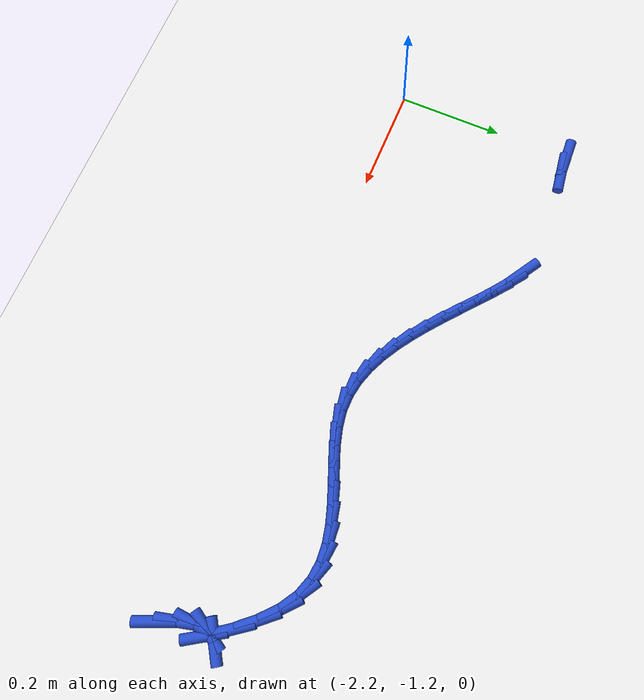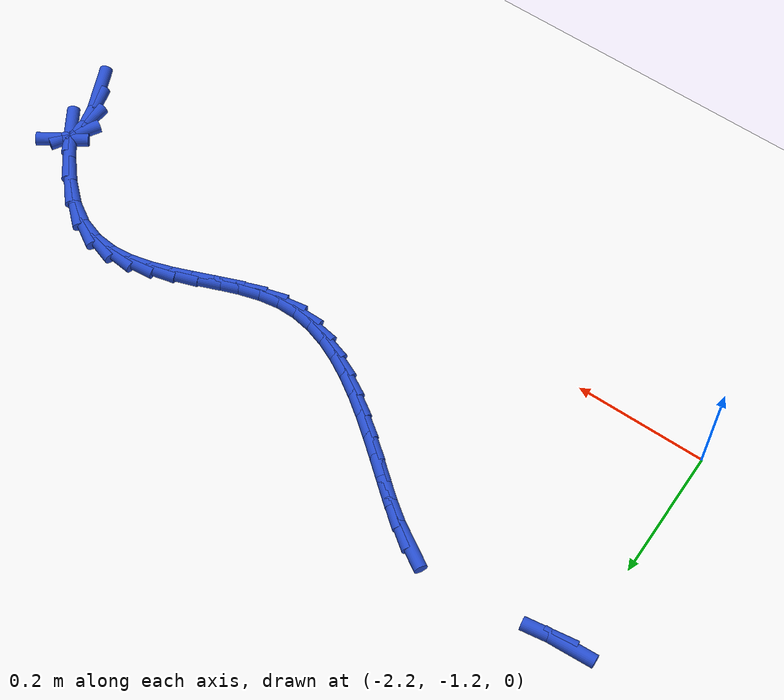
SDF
<sdf version="1.6">
 <world name="default">
  <model name="ground_plane">
   <static>1</static>
   <link name="link">
    <collision name="collision">
     <geometry><plane><normal>0 0 1</normal><size>100 100</size></plane></geometry>
     <surface><friction><ode><mu>100</mu><mu2>50</mu2></ode></friction></surface>
    </collision>
    <visual name="visual">
     <cast_shadows>0</cast_shadows>
     <geometry><plane><normal>0 0 1</normal><size>100 100</size></plane></geometry>
     <material>
      <script><uri>file://media/materials/scripts/gazebo.material</uri><name>Gazebo/WhiteGlow</name></script>
     </material>
    </visual>
   </link>
  </model>
  <model name="line">
   <link name="link_175">
    <pose>-2.1912838968864476 -0.8583134112381553 0.01 0 1.57 0.04760691551529575</pose>
    <collision name="collision">
     <geometry><cylinder><radius>0.01</radius><length>0.08</length></cylinder></geometry>
    </collision>
    <visual name="visual">
     <material>
      <script><name>Gazebo/Blue</name><uri>file://media/materials/scripts/gazebo.material</uri></script>
     </material>
     <geometry><cylinder><radius>0.01</radius><length>0.08</length></cylinder></geometry>
    </visual>
   </link>
   <link name="link_176">
    <pose>-2.1614167463813723 -0.8568904531587881 0.01 0 1.57 0.1448388227000625</pose>
    <collision name="collision">
     <geometry><cylinder><radius>0.01</radius><length>0.08</length></cylinder></geometry>
    </collision>
    <visual name="visual">
     <material>
      <script><name>Gazebo/Blue</name><uri>file://media/materials/scripts/gazebo.material</uri></script>
     </material>
     <geometry><cylinder><radius>0.01</radius><length>0.08</length></cylinder></geometry>
    </visual>
   </link>
   <link name="link_183">
    <pose>-1.934467540484936 -0.8596060711630081 0.01 0 1.57 -0.5558771390165467</pose>
    <collision name="collision">
     <geometry><cylinder><radius>0.01</radius><length>0.08</length></cylinder></geometry>
    </collision>
    <visual name="visual">
     <material>
      <script><name>Gazebo/Blue</name><uri>file://media/materials/scripts/gazebo.material</uri></script>
     </material>
     <geometry><cylinder><radius>0.01</radius><length>0.08</length></cylinder></geometry>
    </visual>
   </link>
   <link name="link_184">
    <pose>-1.907080605408243 -0.8766194074506535 0.01 0 1.57 -0.6439717180642394</pose>
    <collision name="collision">
     <geometry><cylinder><radius>0.01</radius><length>0.08</length></cylinder></geometry>
    </collision>
    <visual name="visual">
     <material>
      <script><name>Gazebo/Blue</name><uri>file://media/materials/scripts/gazebo.material</uri></script>
     </material>
     <geometry><cylinder><radius>0.01</radius><length>0.08</length></cylinder></geometry>
    </visual>
   </link>
   <link name="link_185">
    <pose>-1.8804675065969298 -0.8965988077998873 0.01 0 1.57 -0.6895827790338699</pose>
    <collision name="collision">
     <geometry><cylinder><radius>0.01</radius><length>0.08</length></cylinder></geometry>
    </collision>
    <visual name="visual">
     <material>
      <script><name>Gazebo/Blue</name><uri>file://media/materials/scripts/gazebo.material</uri></script>
     </material>
     <geometry><cylinder><radius>0.01</radius><length>0.08</length></cylinder></geometry>
    </visual>
   </link>
   <link name="link_186">
    <pose>-1.854082015164068 -0.9183572055029484 0.01 0 1.57 -0.7011134415397933</pose>
    <collision name="collision">
     <geometry><cylinder><radius>0.01</radius><length>0.08</length></cylinder></geometry>
    </collision>
    <visual name="visual">
     <material>
      <script><name>Gazebo/Blue</name><uri>file://media/materials/scripts/gazebo.material</uri></script>
     </material>
     <geometry><cylinder><radius>0.01</radius><length>0.08</length></cylinder></geometry>
    </visual>
   </link>
   <link name="link_187">
    <pose>-1.8274777178035446 -0.9408163814791135 0.01 0 1.57 -0.6953031424153892</pose>
    <collision name="collision">
     <geometry><cylinder><radius>0.01</radius><length>0.08</length></cylinder></geometry>
    </collision>
    <visual name="visual">
     <material>
      <script><name>Gazebo/Blue</name><uri>file://media/materials/scripts/gazebo.material</uri></script>
     </material>
     <geometry><cylinder><radius>0.01</radius><length>0.08</length></cylinder></geometry>
    </visual>
   </link>
   <link name="link_188">
    <pose>-1.8005557606638423 -0.9632771258321795 0.01 0 1.57 -0.675528801484929</pose>
    <collision name="collision">
     <geometry><cylinder><radius>0.01</radius><length>0.08</length></cylinder></geometry>
    </collision>
    <visual name="visual">
     <material>
      <script><name>Gazebo/Blue</name><uri>file://media/materials/scripts/gazebo.material</uri></script>
     </material>
     <geometry><cylinder><radius>0.01</radius><length>0.08</length></cylinder></geometry>
    </visual>
   </link>
   <link name="link_189">
    <pose>-1.7732928905405596 -0.9851226702143862 0.01 0 1.57 -0.6410247142658604</pose>
    <collision name="collision">
     <geometry><cylinder><radius>0.01</radius><length>0.08</length></cylinder></geometry>
    </collision>
    <visual name="visual">
     <material>
      <script><name>Gazebo/Blue</name><uri>file://media/materials/scripts/gazebo.material</uri></script>
     </material>
     <geometry><cylinder><radius>0.01</radius><length>0.08</length></cylinder></geometry>
    </visual>
   </link>
   <link name="link_190">
    <pose>-1.7456658542292944 -1.0057362462779729 0.01 0 1.57 -0.5901873506660598</pose>
    <collision name="collision">
     <geometry><cylinder><radius>0.01</radius><length>0.08</length></cylinder></geometry>
    </collision>
    <visual name="visual">
     <material>
      <script><name>Gazebo/Blue</name><uri>file://media/materials/scripts/gazebo.material</uri></script>
     </material>
     <geometry><cylinder><radius>0.01</radius><length>0.08</length></cylinder></geometry>
    </visual>
   </link>
   <link name="link_191">
    <pose>-1.7176513985256467 -1.0245010856751777 0.01 0 1.57 -0.5206406910335292</pose>
    <collision name="collision">
     <geometry><cylinder><radius>0.01</radius><length>0.08</length></cylinder></geometry>
    </collision>
    <visual name="visual">
     <material>
      <script><name>Gazebo/Blue</name><uri>file://media/materials/scripts/gazebo.material</uri></script>
     </material>
     <geometry><cylinder><radius>0.01</radius><length>0.08</length></cylinder></geometry>
    </visual>
   </link>
   <link name="link_192">
    <pose>-1.6892262702252148 -1.0408004200582406 0.01 0 1.57 -0.42947572876335466</pose>
    <collision name="collision">
     <geometry><cylinder><radius>0.01</radius><length>0.08</length></cylinder></geometry>
    </collision>
    <visual name="visual">
     <material>
      <script><name>Gazebo/Blue</name><uri>file://media/materials/scripts/gazebo.material</uri></script>
     </material>
     <geometry><cylinder><radius>0.01</radius><length>0.08</length></cylinder></geometry>
    </visual>
   </link>
   <link name="link_193">
    <pose>-1.660367216123596 -1.0540174810794005 0.01 0 1.57 -0.3139308632416836</pose>
    <collision name="collision">
     <geometry><cylinder><radius>0.01</radius><length>0.08</length></cylinder></geometry>
    </collision>
    <visual name="visual">
     <material>
      <script><name>Gazebo/Blue</name><uri>file://media/materials/scripts/gazebo.material</uri></script>
     </material>
     <geometry><cylinder><radius>0.01</radius><length>0.08</length></cylinder></geometry>
    </visual>
   </link>
   <link name="link_194">
    <pose>-1.6310509830163904 -1.0635355003908975 0.01 0 1.57 -0.1728481298924049</pose>
    <collision name="collision">
     <geometry><cylinder><radius>0.01</radius><length>0.08</length></cylinder></geometry>
    </collision>
    <visual name="visual">
     <material>
      <script><name>Gazebo/Blue</name><uri>file://media/materials/scripts/gazebo.material</uri></script>
     </material>
     <geometry><cylinder><radius>0.01</radius><length>0.08</length></cylinder></geometry>
    </visual>
   </link>
   <link name="link_195">
    <pose>-1.6012543176991954 -1.0687377096449702 0.01 0 1.57 -0.00889878869074707</pose>
    <collision name="collision">
     <geometry><cylinder><radius>0.01</radius><length>0.08</length></cylinder></geometry>
    </collision>
    <visual name="visual">
     <material>
      <script><name>Gazebo/Blue</name><uri>file://media/materials/scripts/gazebo.material</uri></script>
     </material>
     <geometry><cylinder><radius>0.01</radius><length>0.08</length></cylinder></geometry>
    </visual>
   </link>
   <link name="link_196">
    <pose>-1.5709539676327102 -1.0690073531750552 0.01 0 1.57 0.15774897195376852</pose>
    <collision name="collision">
     <geometry><cylinder><radius>0.01</radius><length>0.08</length></cylinder></geometry>
    </collision>
    <visual name="visual">
     <material>
      <script><name>Gazebo/Blue</name><uri>file://media/materials/scripts/gazebo.material</uri></script>
     </material>
     <geometry><cylinder><radius>0.01</radius><length>0.08</length></cylinder></geometry>
    </visual>
   </link>
   <link name="link_197">
    <pose>-1.5401465644966055 -1.0641067997414662 0.01 0 1.57 0.2785503043188697</pose>
    <collision name="collision">
     <geometry><cylinder><radius>0.01</radius><length>0.08</length></cylinder></geometry>
    </collision>
    <visual name="visual">
     <material>
      <script><name>Gazebo/Blue</name><uri>file://media/materials/scripts/gazebo.material</uri></script>
     </material>
     <geometry><cylinder><radius>0.01</radius><length>0.08</length></cylinder></geometry>
    </visual>
   </link>
   <link name="link_198">
    <pose>-1.5089007259422809 -1.0551709457513516 0.01 0 1.57 0.3497511422918852</pose>
    <collision name="collision">
     <geometry><cylinder><radius>0.01</radius><length>0.08</length></cylinder></geometry>
    </collision>
    <visual name="visual">
     <material>
      <script><name>Gazebo/Blue</name><uri>file://media/materials/scripts/gazebo.material</uri></script>
     </material>
     <geometry><cylinder><radius>0.01</radius><length>0.08</length></cylinder></geometry>
    </visual>
   </link>
   <link name="link_199">
    <pose>-1.4773013545342533 -1.043645185517864 0.01 0 1.57 0.37842363470201895</pose>
    <collision name="collision">
     <geometry><cylinder><radius>0.01</radius><length>0.08</length></cylinder></geometry>
    </collision>
    <visual name="visual">
     <material>
      <script><name>Gazebo/Blue</name><uri>file://media/materials/scripts/gazebo.material</uri></script>
     </material>
     <geometry><cylinder><radius>0.01</radius><length>0.08</length></cylinder></geometry>
    </visual>
   </link>
   <link name="link_200">
    <pose>-1.4454333528370453 -1.0309749133541568 0.01 0 1.57 0.368309461279626</pose>
    <collision name="collision">
     <geometry><cylinder><radius>0.01</radius><length>0.08</length></cylinder></geometry>
    </collision>
    <visual name="visual">
     <material>
      <script><name>Gazebo/Blue</name><uri>file://media/materials/scripts/gazebo.material</uri></script>
     </material>
     <geometry><cylinder><radius>0.01</radius><length>0.08</length></cylinder></geometry>
    </visual>
   </link>
   <link name="link_201">
    <pose>-1.4133816234151741 -1.0186055235733826 0.01 0 1.57 0.31912421521856765</pose>
    <collision name="collision">
     <geometry><cylinder><radius>0.01</radius><length>0.08</length></cylinder></geometry>
    </collision>
    <visual name="visual">
     <material>
      <script><name>Gazebo/Blue</name><uri>file://media/materials/scripts/gazebo.material</uri></script>
     </material>
     <geometry><cylinder><radius>0.01</radius><length>0.08</length></cylinder></geometry>
    </visual>
   </link>
   <link name="link_202">
    <pose>-1.381231068833159 -1.0079824104886943 0.01 0 1.57 0.2270606712335033</pose>
    <collision name="collision">
     <geometry><cylinder><radius>0.01</radius><length>0.08</length></cylinder></geometry>
    </collision>
    <visual name="visual">
     <material>
      <script><name>Gazebo/Blue</name><uri>file://media/materials/scripts/gazebo.material</uri></script>
     </material>
     <geometry><cylinder><radius>0.01</radius><length>0.08</length></cylinder></geometry>
    </visual>
   </link>
   <link name="link_203">
    <pose>-1.3490665916555193 -1.0005509684132448 0.01 0 1.57 0.08685083900364994</pose>
    <collision name="collision">
     <geometry><cylinder><radius>0.01</radius><length>0.08</length></cylinder></geometry>
    </collision>
    <visual name="visual">
     <material>
      <script><name>Gazebo/Blue</name><uri>file://media/materials/scripts/gazebo.material</uri></script>
     </material>
     <geometry><cylinder><radius>0.01</radius><length>0.08</length></cylinder></geometry>
    </visual>
   </link>
   <link name="link_204">
    <pose>-1.3169730944467741 -0.9977565916601866 0.01 0 1.57 -0.10259185059086696</pose>
    <collision name="collision">
     <geometry><cylinder><radius>0.01</radius><length>0.08</length></cylinder></geometry>
    </collision>
    <visual name="visual">
     <material>
      <script><name>Gazebo/Blue</name><uri>file://media/materials/scripts/gazebo.material</uri></script>
     </material>
     <geometry><cylinder><radius>0.01</radius><length>0.08</length></cylinder></geometry>
    </visual>
   </link>
   <link name="link_205">
    <pose>-1.2850354797714427 -1.0010446745426729 0.01 0 1.57 -0.3288414209382639</pose>
    <collision name="collision">
     <geometry><cylinder><radius>0.01</radius><length>0.08</length></cylinder></geometry>
    </collision>
    <visual name="visual">
     <material>
      <script><name>Gazebo/Blue</name><uri>file://media/materials/scripts/gazebo.material</uri></script>
     </material>
     <geometry><cylinder><radius>0.01</radius><length>0.08</length></cylinder></geometry>
    </visual>
   </link>
   <link name="link_206">
    <pose>-1.2533386501940438 -1.0118606113738557 0.01 0 1.57 -0.5604878196218436</pose>
    <collision name="collision">
     <geometry><cylinder><radius>0.01</radius><length>0.08</length></cylinder></geometry>
    </collision>
    <visual name="visual">
     <material>
      <script><name>Gazebo/Blue</name><uri>file://media/materials/scripts/gazebo.material</uri></script>
     </material>
     <geometry><cylinder><radius>0.01</radius><length>0.08</length></cylinder></geometry>
    </visual>
   </link>
   <link name="link_207">
    <pose>-1.2219845636808666 -1.0315393549888112 0.01 0 1.57 -0.740202350769907</pose>
    <collision name="collision">
     <geometry><cylinder><radius>0.01</radius><length>0.08</length></cylinder></geometry>
    </collision>
    <visual name="visual">
     <material>
      <script><name>Gazebo/Blue</name><uri>file://media/materials/scripts/gazebo.material</uri></script>
     </material>
     <geometry><cylinder><radius>0.01</radius><length>0.08</length></cylinder></geometry>
    </visual>
   </link>
   <link name="link_208">
    <pose>-1.1913703952819525 -1.0595041934302154 0.01 0 1.57 -0.8615757539099234</pose>
    <collision name="collision">
     <geometry><cylinder><radius>0.01</radius><length>0.08</length></cylinder></geometry>
    </collision>
    <visual name="visual">
     <material>
      <script><name>Gazebo/Blue</name><uri>file://media/materials/scripts/gazebo.material</uri></script>
     </material>
     <geometry><cylinder><radius>0.01</radius><length>0.08</length></cylinder></geometry>
    </visual>
   </link>
   <link name="link_209">
    <pose>-1.1621429597142656 -1.0935618844371162 0.01 0 1.57 -0.9486275560031526</pose>
    <collision name="collision">
     <geometry><cylinder><radius>0.01</radius><length>0.08</length></cylinder></geometry>
    </collision>
    <visual name="visual">
     <material>
      <script><name>Gazebo/Blue</name><uri>file://media/materials/scripts/gazebo.material</uri></script>
     </material>
     <geometry><cylinder><radius>0.01</radius><length>0.08</length></cylinder></geometry>
    </visual>
   </link>
   <link name="link_210">
    <pose>-1.1349569311828072 -1.131468291991397 0.01 0 1.57 -1.0159261201114704</pose>
    <collision name="collision">
     <geometry><cylinder><radius>0.01</radius><length>0.08</length></cylinder></geometry>
    </collision>
    <visual name="visual">
     <material>
      <script><name>Gazebo/Blue</name><uri>file://media/materials/scripts/gazebo.material</uri></script>
     </material>
     <geometry><cylinder><radius>0.01</radius><length>0.08</length></cylinder></geometry>
    </visual>
   </link>
   <link name="link_221">
    <pose>-1.1245440539408265 -1.2163343867372713 0.01 0 1.57 -1.1729765257492935</pose>
    <collision name="collision">
     <geometry><cylinder><radius>0.01</radius><length>0.08</length></cylinder></geometry>
    </collision>
    <visual name="visual">
     <material>
      <script><name>Gazebo/Blue</name><uri>file://media/materials/scripts/gazebo.material</uri></script>
     </material>
     <geometry><cylinder><radius>0.01</radius><length>0.08</length></cylinder></geometry>
    </visual>
   </link>
   <link name="link_222">
    <pose>-1.1388213252181172 -1.1823591383467453 0.01 0 1.57 -1.3356238990719618</pose>
    <collision name="collision">
     <geometry><cylinder><radius>0.01</radius><length>0.08</length></cylinder></geometry>
    </collision>
    <visual name="visual">
     <material>
      <script><name>Gazebo/Blue</name><uri>file://media/materials/scripts/gazebo.material</uri></script>
     </material>
     <geometry><cylinder><radius>0.01</radius><length>0.08</length></cylinder></geometry>
    </visual>
   </link>
   <link name="link_223">
    <pose>-1.1459366834449864 -1.1526630642118056 0.01 0 1.57 1.4906444358736013</pose>
    <collision name="collision">
     <geometry><cylinder><radius>0.01</radius><length>0.08</length></cylinder></geometry>
    </collision>
    <visual name="visual">
     <material>
      <script><name>Gazebo/Blue</name><uri>file://media/materials/scripts/gazebo.material</uri></script>
     </material>
     <geometry><cylinder><radius>0.01</radius><length>0.08</length></cylinder></geometry>
    </visual>
   </link>
   <link name="link_224">
    <pose>-1.144091713843699 -1.129693961526772 0.01 0 1.57 1.0230433616262329</pose>
    <collision name="collision">
     <geometry><cylinder><radius>0.01</radius><length>0.08</length></cylinder></geometry>
    </collision>
    <visual name="visual">
     <material>
      <script><name>Gazebo/Blue</name><uri>file://media/materials/scripts/gazebo.material</uri></script>
     </material>
     <geometry><cylinder><radius>0.01</radius><length>0.08</length></cylinder></geometry>
    </visual>
   </link>
   <link name="link_225">
    <pose>-1.133907286940947 -1.1129986660947782 0.01 0 1.57 0.5663937600169058</pose>
    <collision name="collision">
     <geometry><cylinder><radius>0.01</radius><length>0.08</length></cylinder></geometry>
    </collision>
    <visual name="visual">
     <material>
      <script><name>Gazebo/Blue</name><uri>file://media/materials/scripts/gazebo.material</uri></script>
     </material>
     <geometry><cylinder><radius>0.01</radius><length>0.08</length></cylinder></geometry>
    </visual>
   </link>
  </model>
 </world>
</sdf>
